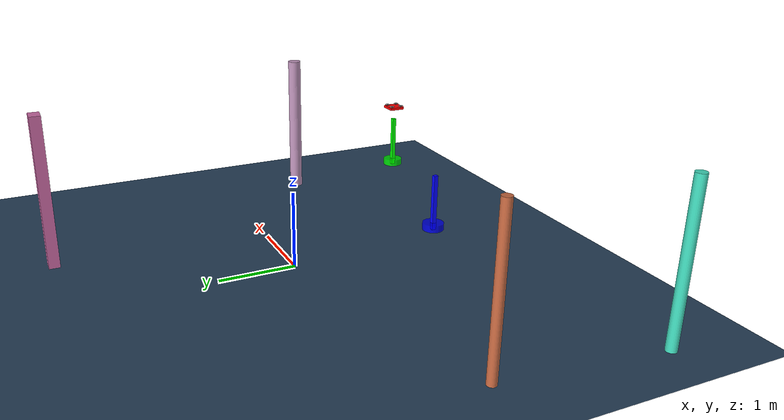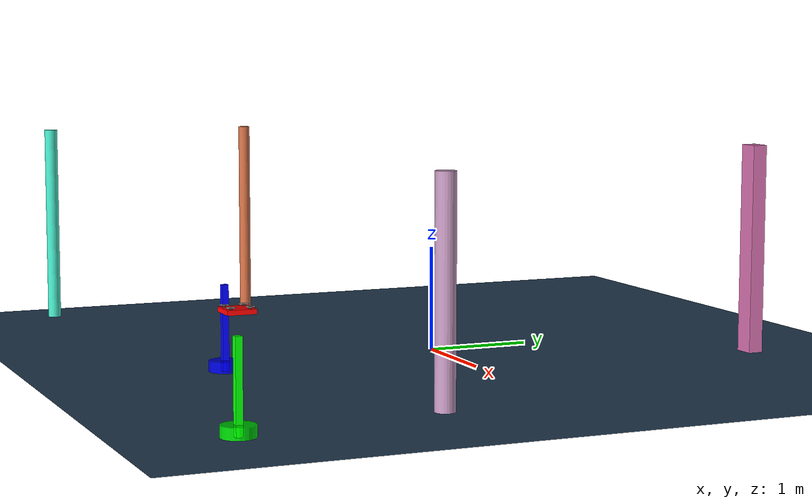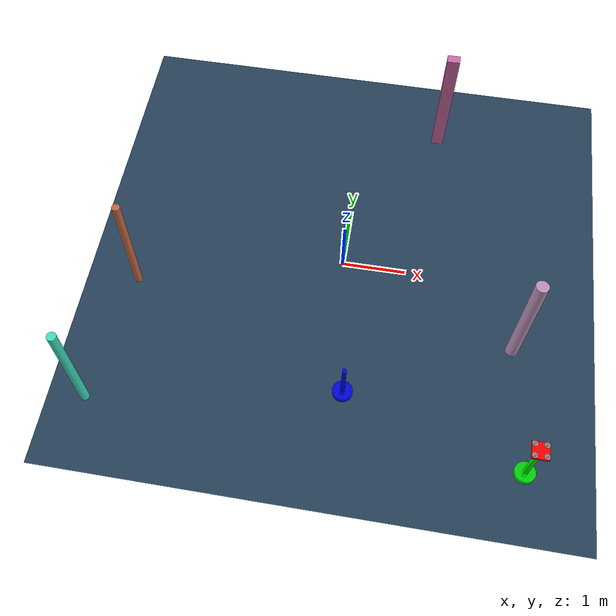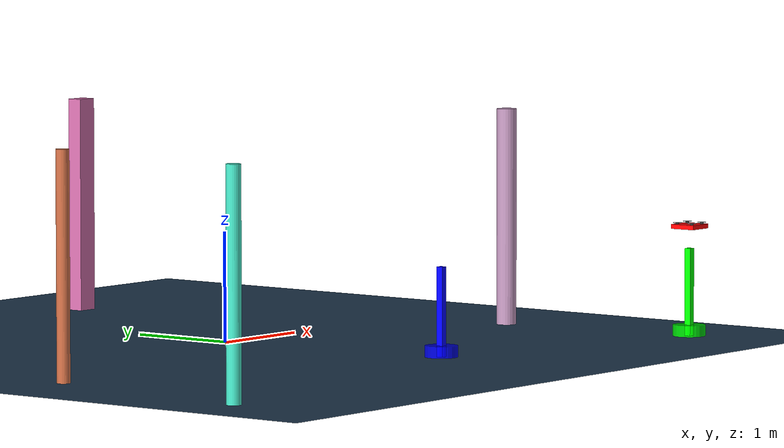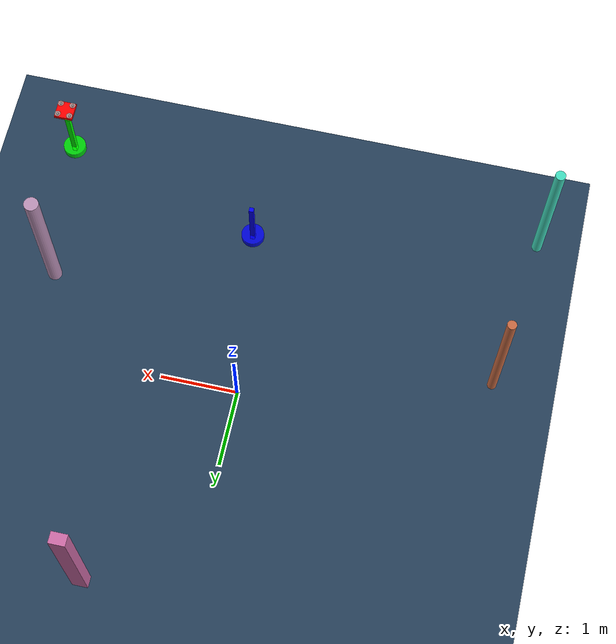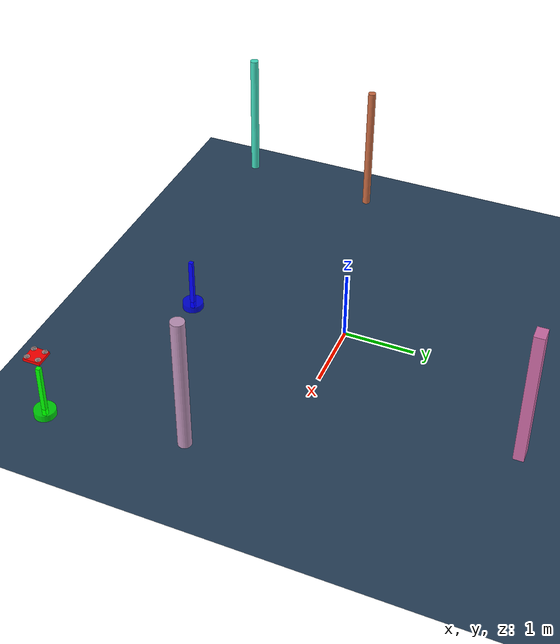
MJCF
<mujoco model="complex_uav_env">
  <compiler angle="degree" coordinate="local" inertiafromgeom="true"/>
  <option integrator="RK4" timestep="0.01"/>

  <visual>
    <headlight diffuse="0.6 0.6 0.6" ambient="0.3 0.3 0.3"/>
    <rgba haze="0.15 0.25 0.35 1"/>
    <global offwidth="2560" offheight="1440"/>
  </visual>

  <asset>
    <texture type="skybox" builtin="gradient" rgb1="0.3 0.5 0.7" rgb2="0 0 0" width="512" height="3072"/>
    <texture name="grid" type="2d" builtin="checker" rgb1="0.1 0.2 0.3" rgb2="0.2 0.3 0.4" width="512" height="512"/>
    <material name="grid" texture="grid" texrepeat="1 1" reflectance="0.2"/>
  </asset>

  <worldbody>
    <!-- Ground plane -->
    <geom name="ground" type="plane" size="4.0 4.0 0.1" material="grid"/>
    <light name="light1" pos="0 0 4" dir="0 0 -1" diffuse="1 1 1"/>

    <!-- Start position marker (green) -->
    <geom name="start_marker" type="cylinder" size="0.15 0.05" pos="3.0 -3.0 0.05" rgba="0 1 0 0.8"/>
    <geom name="start_pole" type="box" size="0.03 0.03 0.4" pos="3.0 -3.0 0.4" rgba="0 1 0 1"/>

    <!-- Goal position marker (blue) -->
    <geom name="goal_marker" type="cylinder" size="0.15 0.05" pos="0.3060987009141902 -2.2119365796287447 0.05" rgba="0 0 1 0.8"/>
    <geom name="goal_pole" type="box" size="0.03 0.03 0.4" pos="0.3060987009141902 -2.2119365796287447 0.4" rgba="0 0 1 1"/>

    <!-- UAV starting position -->
    <body name="chassis" pos="3.0 -3.0 1.0">
      <joint type="free" name="root"/>
      <geom type="box" size="0.12 0.12 0.02" rgba="1.0 0.0 0.0 1.0" mass="0.8"/>

      <!-- Propeller arms and motors -->
      <geom type="box" size="0.08 0.01 0.005" pos="0 0 0.01" rgba="0.3 0.3 0.3 1"/>
      <geom type="box" size="0.01 0.08 0.005" pos="0 0 0.01" rgba="0.3 0.3 0.3 1"/>

      <!-- Motor visual geometry -->
      <geom type="cylinder" size="0.015 0.02" pos="0.08 0.08 0.015" rgba="0.2 0.2 0.2 1"/>
      <geom type="cylinder" size="0.015 0.02" pos="-0.08 0.08 0.015" rgba="0.2 0.2 0.2 1"/>
      <geom type="cylinder" size="0.015 0.02" pos="0.08 -0.08 0.015" rgba="0.2 0.2 0.2 1"/>
      <geom type="cylinder" size="0.015 0.02" pos="-0.08 -0.08 0.015" rgba="0.2 0.2 0.2 1"/>

      <!-- Propellers -->
      <geom type="cylinder" size="0.04 0.002" pos="0.08 0.08 0.035" rgba="0.7 0.7 0.7 0.8"/>
      <geom type="cylinder" size="0.04 0.002" pos="-0.08 0.08 0.035" rgba="0.7 0.7 0.7 0.8"/>
      <geom type="cylinder" size="0.04 0.002" pos="0.08 -0.08 0.035" rgba="0.7 0.7 0.7 0.8"/>
      <geom type="cylinder" size="0.04 0.002" pos="-0.08 -0.08 0.035" rgba="0.7 0.7 0.7 0.8"/>

      <!-- Sites for motor force application -->
      <site name="motor1" pos="0.08 0.08 0" size="0.01"/>
      <site name="motor2" pos="-0.08 0.08 0" size="0.01"/>
      <site name="motor3" pos="0.08 -0.08 0" size="0.01"/>
      <site name="motor4" pos="-0.08 -0.08 0" size="0.01"/>
    </body>
    <geom name="test_obs_0" type="box" size="0.10044213079596598 0.07127031856325555 1.0" pos="1.2890013710960673 2.799559561508861 1.0" rgba="0.8087187462069563 0.4214470591689511 0.6552668097894713 1.0"/>
    <geom name="test_obs_1" type="cylinder" size="0.06560291744133893 1.0" pos="-3.43553169254085 -2.8908637342361003 1.0" rgba="0.2604169917406338 0.870812815867925 0.7530494086049876 1.0"/>
    <geom name="test_obs_2" type="cylinder" size="0.09220450457349053 1.0" pos="2.749781663468237 -1.1157255609376644 1.0" rgba="0.7386374916245602 0.5740053716225018 0.7223920808410463 1.0"/>
    <geom name="test_obs_3" type="cylinder" size="0.05881608802435076 1.0" pos="-3.181016147965879 -0.8160692184128645 1.0" rgba="0.7845050080465439 0.4175686506016064 0.26160587276762504 1.0"/>
  </worldbody>

  <actuator>
    <motor name="m1" gear="0 0 1 0 0 0" site="motor1"/>
    <motor name="m2" gear="0 0 1 0 0 0" site="motor2"/>
    <motor name="m3" gear="0 0 1 0 0 0" site="motor3"/>
    <motor name="m4" gear="0 0 1 0 0 0" site="motor4"/>
  </actuator>
</mujoco>
